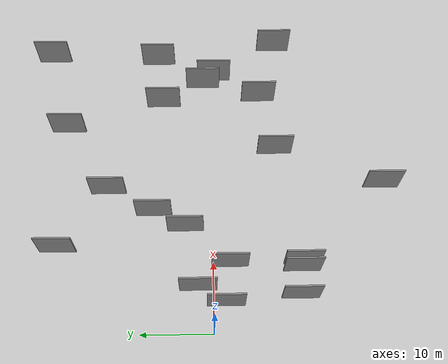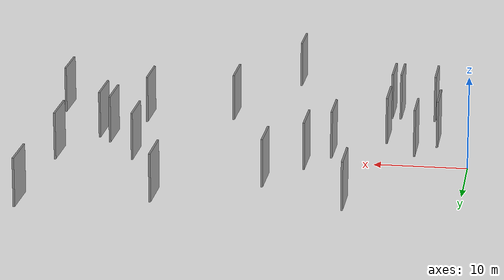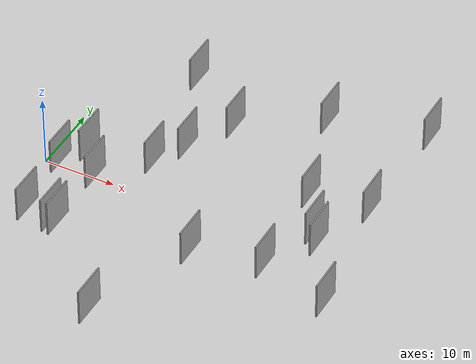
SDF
<sdf version="1.6">
 <world name="default">
  <scene>
   <sky><clouds><speed>12</speed></clouds></sky>
   <ambient>0.4 0.4 0.4 1</ambient>
   <background>0.7 0.7 0.7 1</background>
   <shadows>1</shadows>
  </scene>
  <gravity>0 0 -9.8066</gravity>
  <magnetic_field>6e-06 2.3e-05 -4.2e-05</magnetic_field>
  <physics default="0" name="default_physics" type="ode">
   <ode>
    <solver>
     <type>quick</type>
     <iters>10</iters>
     <sor>1.0</sor>
     <use_dynamic_moi_rescaling>0</use_dynamic_moi_rescaling>
    </solver>
    <constraints>
     <cfm>0</cfm>
     <erp>0.2</erp>
     <contact_max_correcting_vel>100</contact_max_correcting_vel>
     <contact_surface_layer>0.001</contact_surface_layer>
    </constraints>
   </ode>
   <max_step_size>0.004</max_step_size>
   <real_time_factor>1</real_time_factor>
   <real_time_update_rate>250</real_time_update_rate>
  </physics>
  <light name="sun" type="directional">
   <pose>0 0 10 0 0 0</pose>
   <diffuse>0.8 0.8 0.8 1</diffuse>
   <specular>0.2 0.2 0.2 1</specular>
   <attenuation>
    <range>1000</range>
    <constant>0.9</constant>
    <linear>0.01</linear>
    <quadratic>0.001</quadratic>
   </attenuation>
   <direction>-0.5 0.1 -0.9</direction>
  </light>
  <model name="grey_wall_1">
   <static>1</static>
   <pose>3.2488 -1.5777 2.5 0.000000 0.000000 1.570796</pose>
   <link name="link">
    <pose>0 0 2.50 0 0 0</pose>
    <collision name="collision"><geometry><box><size>5.00 0.2 5.00</size></box></geometry></collision>
    <visual name="visual">
     <cast_shadows>0</cast_shadows>
     <geometry><box><size>5.00 0.2 5.00</size></box></geometry>
     <material>
      <script>
       <uri>model://grey_wall/materials/scripts</uri>
       <uri>model://grey_wall/materials/textures</uri>
       <name>vrc/grey_wall</name>
      </script>
     </material>
    </visual>
   </link>
  </model>
  <model name="grey_wall_2">
   <static>1</static>
   <pose>8.9226 -12.0013 2.5 0.000000 0.000000 1.570796</pose>
   <link name="link">
    <pose>0 0 2.50 0 0 0</pose>
    <collision name="collision"><geometry><box><size>5.00 0.2 5.00</size></box></geometry></collision>
    <visual name="visual">
     <cast_shadows>0</cast_shadows>
     <geometry><box><size>5.00 0.2 5.00</size></box></geometry>
     <material>
      <script>
       <uri>model://grey_wall/materials/scripts</uri>
       <uri>model://grey_wall/materials/textures</uri>
       <name>vrc/grey_wall</name>
      </script>
     </material>
    </visual>
   </link>
  </model>
  <model name="grey_wall_3">
   <static>1</static>
   <pose>26.1405 -9.0996 2.5 0.000000 0.000000 1.570796</pose>
   <link name="link">
    <pose>0 0 2.50 0 0 0</pose>
    <collision name="collision"><geometry><box><size>5.00 0.2 5.00</size></box></geometry></collision>
    <visual name="visual">
     <cast_shadows>0</cast_shadows>
     <geometry><box><size>5.00 0.2 5.00</size></box></geometry>
     <material>
      <script>
       <uri>model://grey_wall/materials/scripts</uri>
       <uri>model://grey_wall/materials/textures</uri>
       <name>vrc/grey_wall</name>
      </script>
     </material>
    </visual>
   </link>
  </model>
  <model name="grey_wall_4">
   <static>1</static>
   <pose>37.9892 1.3046 2.5 0.000000 0.000000 1.570796</pose>
   <link name="link">
    <pose>0 0 2.50 0 0 0</pose>
    <collision name="collision"><geometry><box><size>5.00 0.2 5.00</size></box></geometry></collision>
    <visual name="visual">
     <cast_shadows>0</cast_shadows>
     <geometry><box><size>5.00 0.2 5.00</size></box></geometry>
     <material>
      <script>
       <uri>model://grey_wall/materials/scripts</uri>
       <uri>model://grey_wall/materials/textures</uri>
       <name>vrc/grey_wall</name>
      </script>
     </material>
    </visual>
   </link>
  </model>
  <model name="grey_wall_5">
   <static>1</static>
   <pose>11.0027 21.3055 2.5 0.000000 0.000000 1.570796</pose>
   <link name="link">
    <pose>0 0 2.50 0 0 0</pose>
    <collision name="collision"><geometry><box><size>5.00 0.2 5.00</size></box></geometry></collision>
    <visual name="visual">
     <cast_shadows>0</cast_shadows>
     <geometry><box><size>5.00 0.2 5.00</size></box></geometry>
     <material>
      <script>
       <uri>model://grey_wall/materials/scripts</uri>
       <uri>model://grey_wall/materials/textures</uri>
       <name>vrc/grey_wall</name>
      </script>
     </material>
    </visual>
   </link>
  </model>
  <model name="grey_wall_6">
   <static>1</static>
   <pose>5.3914 2.0999 2.5 0.000000 0.000000 1.570796</pose>
   <link name="link">
    <pose>0 0 2.50 0 0 0</pose>
    <collision name="collision"><geometry><box><size>5.00 0.2 5.00</size></box></geometry></collision>
    <visual name="visual">
     <cast_shadows>0</cast_shadows>
     <geometry><box><size>5.00 0.2 5.00</size></box></geometry>
     <material>
      <script>
       <uri>model://grey_wall/materials/scripts</uri>
       <uri>model://grey_wall/materials/textures</uri>
       <name>vrc/grey_wall</name>
      </script>
     </material>
    </visual>
   </link>
  </model>
  <model name="grey_wall_7">
   <static>1</static>
   <pose>30.1530 21.3066 2.5 0.000000 0.000000 1.570796</pose>
   <link name="link">
    <pose>0 0 2.50 0 0 0</pose>
    <collision name="collision"><geometry><box><size>5.00 0.2 5.00</size></box></geometry></collision>
    <visual name="visual">
     <cast_shadows>0</cast_shadows>
     <geometry><box><size>5.00 0.2 5.00</size></box></geometry>
     <material>
      <script>
       <uri>model://grey_wall/materials/scripts</uri>
       <uri>model://grey_wall/materials/textures</uri>
       <name>vrc/grey_wall</name>
      </script>
     </material>
    </visual>
   </link>
  </model>
  <model name="grey_wall_8">
   <static>1</static>
   <pose>35.4290 -7.0566 2.5 0.000000 0.000000 1.570796</pose>
   <link name="link">
    <pose>0 0 2.50 0 0 0</pose>
    <collision name="collision"><geometry><box><size>5.00 0.2 5.00</size></box></geometry></collision>
    <visual name="visual">
     <cast_shadows>0</cast_shadows>
     <geometry><box><size>5.00 0.2 5.00</size></box></geometry>
     <material>
      <script>
       <uri>model://grey_wall/materials/scripts</uri>
       <uri>model://grey_wall/materials/textures</uri>
       <name>vrc/grey_wall</name>
      </script>
     </material>
    </visual>
   </link>
  </model>
  <model name="grey_wall_9">
   <static>1</static>
   <pose>39.4159 -0.3610 2.5 0.000000 0.000000 1.570796</pose>
   <link name="link">
    <pose>0 0 2.50 0 0 0</pose>
    <collision name="collision"><geometry><box><size>5.00 0.2 5.00</size></box></geometry></collision>
    <visual name="visual">
     <cast_shadows>0</cast_shadows>
     <geometry><box><size>5.00 0.2 5.00</size></box></geometry>
     <material>
      <script>
       <uri>model://grey_wall/materials/scripts</uri>
       <uri>model://grey_wall/materials/textures</uri>
       <name>vrc/grey_wall</name>
      </script>
     </material>
    </visual>
   </link>
  </model>
  <model name="grey_wall_10">
   <static>1</static>
   <pose>8.6713 -2.1832 2.5 0.000000 0.000000 1.570796</pose>
   <link name="link">
    <pose>0 0 2.50 0 0 0</pose>
    <collision name="collision"><geometry><box><size>5.00 0.2 5.00</size></box></geometry></collision>
    <visual name="visual">
     <cast_shadows>0</cast_shadows>
     <geometry><box><size>5.00 0.2 5.00</size></box></geometry>
     <material>
      <script>
       <uri>model://grey_wall/materials/scripts</uri>
       <uri>model://grey_wall/materials/textures</uri>
       <name>vrc/grey_wall</name>
      </script>
     </material>
    </visual>
   </link>
  </model>
  <model name="grey_wall_11">
   <static>1</static>
   <pose>7.9594 -11.8904 2.5 0.000000 0.000000 1.570796</pose>
   <link name="link">
    <pose>0 0 2.50 0 0 0</pose>
    <collision name="collision"><geometry><box><size>5.00 0.2 5.00</size></box></geometry></collision>
    <visual name="visual">
     <cast_shadows>0</cast_shadows>
     <geometry><box><size>5.00 0.2 5.00</size></box></geometry>
     <material>
      <script>
       <uri>model://grey_wall/materials/scripts</uri>
       <uri>model://grey_wall/materials/textures</uri>
       <name>vrc/grey_wall</name>
      </script>
     </material>
    </visual>
   </link>
  </model>
  <model name="grey_wall_12">
   <static>1</static>
   <pose>20.4215 -24.0753 2.5 0.000000 0.000000 1.570796</pose>
   <link name="link">
    <pose>0 0 2.50 0 0 0</pose>
    <collision name="collision"><geometry><box><size>5.00 0.2 5.00</size></box></geometry></collision>
    <visual name="visual">
     <cast_shadows>0</cast_shadows>
     <geometry><box><size>5.00 0.2 5.00</size></box></geometry>
     <material>
      <script>
       <uri>model://grey_wall/materials/scripts</uri>
       <uri>model://grey_wall/materials/textures</uri>
       <name>vrc/grey_wall</name>
      </script>
     </material>
    </visual>
   </link>
  </model>
  <model name="grey_wall_13">
   <static>1</static>
   <pose>19.8010 14.8368 2.5 0.000000 0.000000 1.570796</pose>
   <link name="link">
    <pose>0 0 2.50 0 0 0</pose>
    <collision name="collision"><geometry><box><size>5.00 0.2 5.00</size></box></geometry></collision>
    <visual name="visual">
     <cast_shadows>0</cast_shadows>
     <geometry><box><size>5.00 0.2 5.00</size></box></geometry>
     <material>
      <script>
       <uri>model://grey_wall/materials/scripts</uri>
       <uri>model://grey_wall/materials/textures</uri>
       <name>vrc/grey_wall</name>
      </script>
     </material>
    </visual>
   </link>
  </model>
  <model name="grey_wall_14">
   <static>1</static>
   <pose>43.1980 24.5683 2.5 0.000000 0.000000 1.570796</pose>
   <link name="link">
    <pose>0 0 2.50 0 0 0</pose>
    <collision name="collision"><geometry><box><size>5.00 0.2 5.00</size></box></geometry></collision>
    <visual name="visual">
     <cast_shadows>0</cast_shadows>
     <geometry><box><size>5.00 0.2 5.00</size></box></geometry>
     <material>
      <script>
       <uri>model://grey_wall/materials/scripts</uri>
       <uri>model://grey_wall/materials/textures</uri>
       <name>vrc/grey_wall</name>
      </script>
     </material>
    </visual>
   </link>
  </model>
  <model name="grey_wall_15">
   <static>1</static>
   <pose>16.3346 8.2708 2.5 0.000000 0.000000 1.570796</pose>
   <link name="link">
    <pose>0 0 2.50 0 0 0</pose>
    <collision name="collision"><geometry><box><size>5.00 0.2 5.00</size></box></geometry></collision>
    <visual name="visual">
     <cast_shadows>0</cast_shadows>
     <geometry><box><size>5.00 0.2 5.00</size></box></geometry>
     <material>
      <script>
       <uri>model://grey_wall/materials/scripts</uri>
       <uri>model://grey_wall/materials/textures</uri>
       <name>vrc/grey_wall</name>
      </script>
     </material>
    </visual>
   </link>
  </model>
  <model name="grey_wall_16">
   <static>1</static>
   <pose>42.5244 8.1802 2.5 0.000000 0.000000 1.570796</pose>
   <link name="link">
    <pose>0 0 2.50 0 0 0</pose>
    <collision name="collision"><geometry><box><size>5.00 0.2 5.00</size></box></geometry></collision>
    <visual name="visual">
     <cast_shadows>0</cast_shadows>
     <geometry><box><size>5.00 0.2 5.00</size></box></geometry>
     <material>
      <script>
       <uri>model://grey_wall/materials/scripts</uri>
       <uri>model://grey_wall/materials/textures</uri>
       <name>vrc/grey_wall</name>
      </script>
     </material>
    </visual>
   </link>
  </model>
  <model name="grey_wall_17">
   <static>1</static>
   <pose>45.0699 -9.8047 2.5 0.000000 0.000000 1.570796</pose>
   <link name="link">
    <pose>0 0 2.50 0 0 0</pose>
    <collision name="collision"><geometry><box><size>5.00 0.2 5.00</size></box></geometry></collision>
    <visual name="visual">
     <cast_shadows>0</cast_shadows>
     <geometry><box><size>5.00 0.2 5.00</size></box></geometry>
     <material>
      <script>
       <uri>model://grey_wall/materials/scripts</uri>
       <uri>model://grey_wall/materials/textures</uri>
       <name>vrc/grey_wall</name>
      </script>
     </material>
    </visual>
   </link>
  </model>
  <model name="grey_wall_18">
   <static>1</static>
   <pose>13.9396 3.8428 2.5 0.000000 0.000000 1.570796</pose>
   <link name="link">
    <pose>0 0 2.50 0 0 0</pose>
    <collision name="collision"><geometry><box><size>5.00 0.2 5.00</size></box></geometry></collision>
    <visual name="visual">
     <cast_shadows>0</cast_shadows>
     <geometry><box><size>5.00 0.2 5.00</size></box></geometry>
     <material>
      <script>
       <uri>model://grey_wall/materials/scripts</uri>
       <uri>model://grey_wall/materials/textures</uri>
       <name>vrc/grey_wall</name>
      </script>
     </material>
    </visual>
   </link>
  </model>
  <model name="grey_wall_19">
   <static>1</static>
   <pose>34.5166 7.2417 2.5 0.000000 0.000000 1.570796</pose>
   <link name="link">
    <pose>0 0 2.50 0 0 0</pose>
    <collision name="collision"><geometry><box><size>5.00 0.2 5.00</size></box></geometry></collision>
    <visual name="visual">
     <cast_shadows>0</cast_shadows>
     <geometry><box><size>5.00 0.2 5.00</size></box></geometry>
     <material>
      <script>
       <uri>model://grey_wall/materials/scripts</uri>
       <uri>model://grey_wall/materials/textures</uri>
       <name>vrc/grey_wall</name>
      </script>
     </material>
    </visual>
   </link>
  </model>
  <model name="grey_wall_20">
   <static>1</static>
   <pose>4.1829 -11.4360 2.5 0.000000 0.000000 1.570796</pose>
   <link name="link">
    <pose>0 0 2.50 0 0 0</pose>
    <collision name="collision"><geometry><box><size>5.00 0.2 5.00</size></box></geometry></collision>
    <visual name="visual">
     <cast_shadows>0</cast_shadows>
     <geometry><box><size>5.00 0.2 5.00</size></box></geometry>
     <material>
      <script>
       <uri>model://grey_wall/materials/scripts</uri>
       <uri>model://grey_wall/materials/textures</uri>
       <name>vrc/grey_wall</name>
      </script>
     </material>
    </visual>
   </link>
  </model>
 </world>
</sdf>
